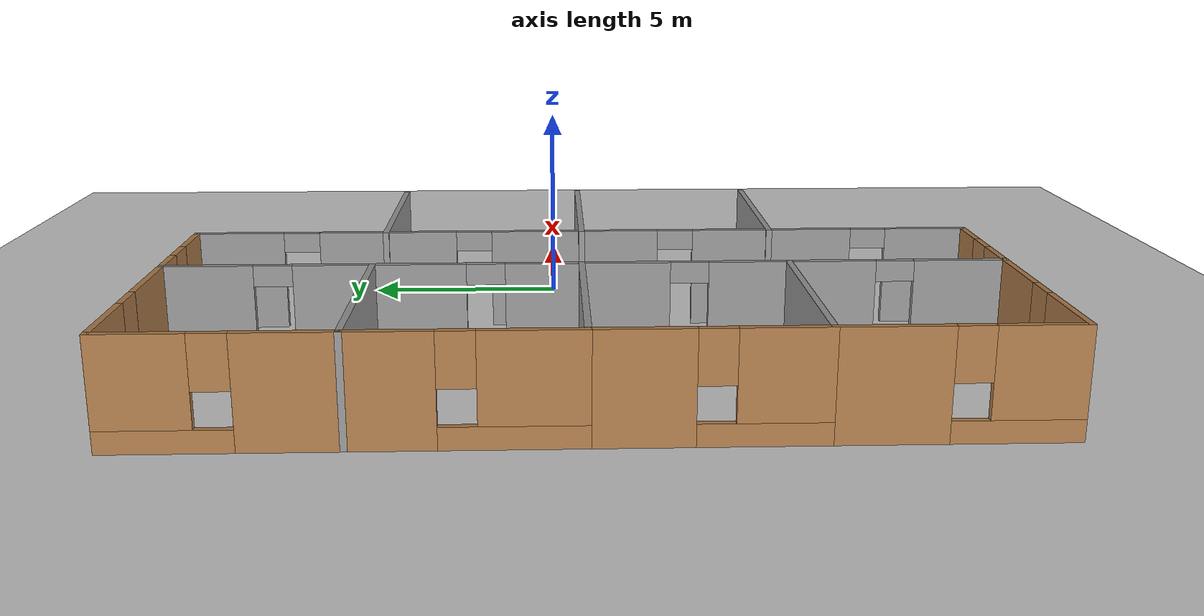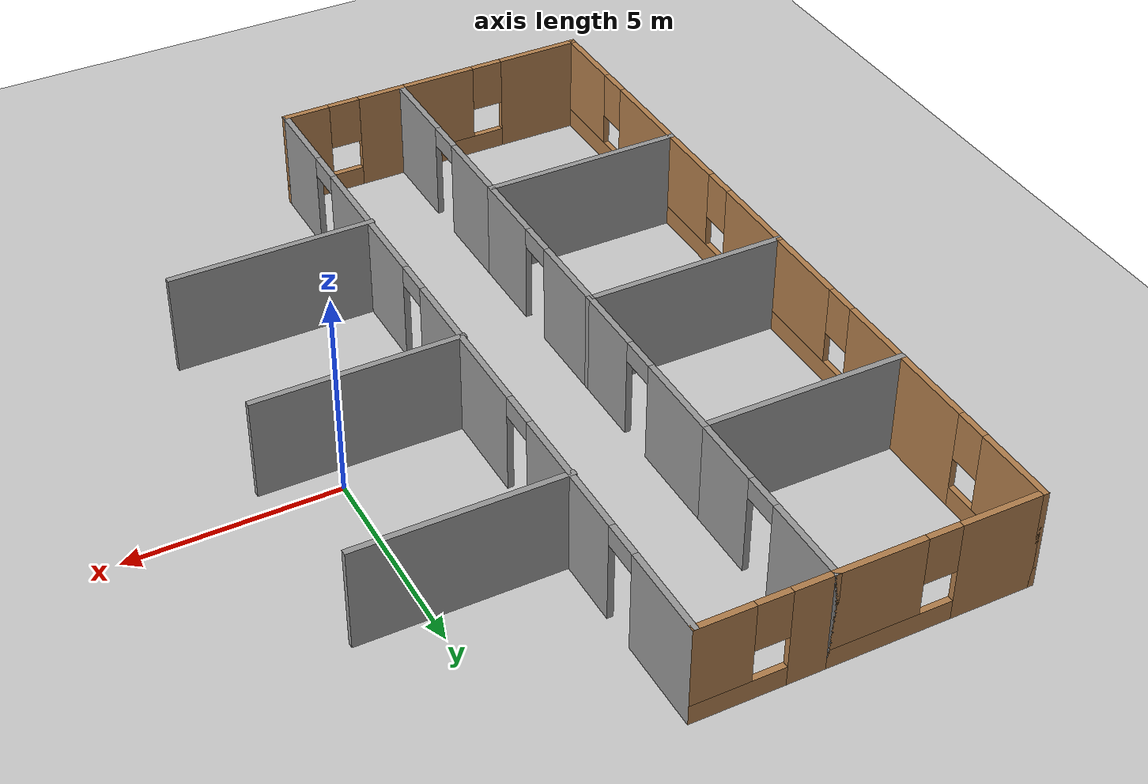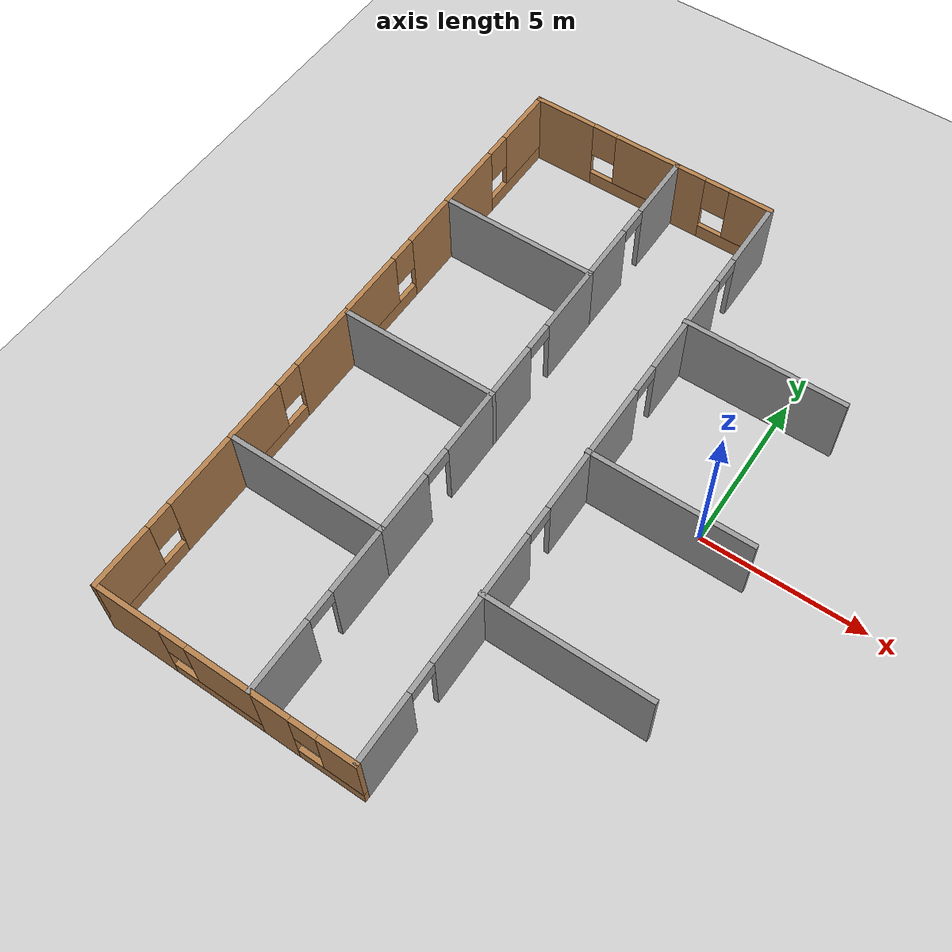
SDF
<sdf version="1.7">
 <world name="hospital_world">
  <model name="ground_plane">
   <static>1</static>
   <link name="link">
    <collision name="collision">
     <geometry><plane><normal>0 0 1</normal><size>100 100</size></plane></geometry>
     <surface><friction><ode><mu>100</mu><mu2>50</mu2></ode></friction></surface>
    </collision>
    <visual name="visual">
     <cast_shadows>0</cast_shadows>
     <geometry><plane><normal>0 0 1</normal><size>100 100</size></plane></geometry>
     <material>
      <script><uri>file://media/materials/scripts/gazebo.material</uri><name>Gazebo/Grey</name></script>
     </material>
    </visual>
   </link>
  </model>
  <model name="hospital_floor_v2">
   <pose>-0.734547 -0.759195 0 0 -0 0</pose>
   <link name="Wall_115">
    <collision name="Wall_115_Collision">
     <geometry><box><size>5 0.15 2.5</size></box></geometry>
     <pose>0 0 1.25 0 -0 0</pose>
    </collision>
    <visual name="Wall_115_Visual">
     <pose>0 0 1.25 0 -0 0</pose>
     <geometry><box><size>5 0.15 2.5</size></box></geometry>
     <material>
      <script><uri>file://media/materials/scripts/gazebo.material</uri><name>Gazebo/Grey</name></script>
      <ambient>1 1 1 1</ambient>
     </material>
     <meta><layer>0</layer></meta>
    </visual>
    <pose>-0.036828 5.04089 0 0 -0 0</pose>
   </link>
   <link name="Wall_117">
    <collision name="Wall_117_Collision">
     <geometry><box><size>5 0.15 2.5</size></box></geometry>
     <pose>0 0 1.25 0 -0 0</pose>
    </collision>
    <visual name="Wall_117_Visual">
     <pose>0 0 1.25 0 -0 0</pose>
     <geometry><box><size>5 0.15 2.5</size></box></geometry>
     <material>
      <script><uri>file://media/materials/scripts/gazebo.material</uri><name>Gazebo/Grey</name></script>
      <ambient>1 1 1 1</ambient>
     </material>
     <meta><layer>0</layer></meta>
    </visual>
    <pose>-0.036828 0.052719 0 0 -0 0</pose>
   </link>
   <link name="Wall_119">
    <collision name="Wall_119_Collision">
     <geometry><box><size>5 0.15 2.5</size></box></geometry>
     <pose>0 0 1.25 0 -0 0</pose>
    </collision>
    <visual name="Wall_119_Visual">
     <pose>0 0 1.25 0 -0 0</pose>
     <geometry><box><size>5 0.15 2.5</size></box></geometry>
     <material>
      <script><uri>file://media/materials/scripts/gazebo.material</uri><name>Gazebo/Grey</name></script>
      <ambient>1 1 1 1</ambient>
     </material>
     <meta><layer>0</layer></meta>
    </visual>
    <pose>-0.036828 -4.77454 0 0 -0 0</pose>
   </link>
   <link name="Wall_24">
    <pose>-10.375 2.5506 0 0 -0 -1.5708</pose>
    <visual name="Wall_24_Visual_0">
     <pose>-1.53431 0 1.25 0 -0 0</pose>
     <geometry><box><size>1.93138 0.15 2.5</size></box></geometry>
     <material>
      <script><uri>file://media/materials/scripts/gazebo.material</uri><name>Gazebo/Wood</name></script>
      <ambient>1 1 1 1</ambient>
     </material>
     <meta><layer>0</layer></meta>
    </visual>
    <collision name="Wall_24_Collision_0">
     <geometry><box><size>1.93138 0.15 2.5</size></box></geometry>
     <pose>-1.53431 0 1.25 0 -0 0</pose>
    </collision>
    <visual name="Wall_24_Visual_1">
     <pose>0.965692 0 0.25 0 -0 0</pose>
     <geometry><box><size>3.06862 0.15 0.5</size></box></geometry>
     <material>
      <script><uri>file://media/materials/scripts/gazebo.material</uri><name>Gazebo/Wood</name></script>
      <ambient>1 1 1 1</ambient>
     </material>
     <meta><layer>0</layer></meta>
    </visual>
    <collision name="Wall_24_Collision_1">
     <geometry><box><size>3.06862 0.15 0.5</size></box></geometry>
     <pose>0.965692 0 0.25 0 -0 0</pose>
    </collision>
    <visual name="Wall_24_Visual_2">
     <pose>1.36569 0 1.5 0 -0 0</pose>
     <geometry><box><size>2.26862 0.15 2</size></box></geometry>
     <material>
      <script><uri>file://media/materials/scripts/gazebo.material</uri><name>Gazebo/Wood</name></script>
      <ambient>1 1 1 1</ambient>
     </material>
     <meta><layer>0</layer></meta>
    </visual>
    <collision name="Wall_24_Collision_2">
     <geometry><box><size>2.26862 0.15 2</size></box></geometry>
     <pose>1.36569 0 1.5 0 -0 0</pose>
    </collision>
    <visual name="Wall_24_Visual_3">
     <pose>-0.168617 0 1.9 0 -0 0</pose>
     <geometry><box><size>0.8 0.15 1.2</size></box></geometry>
     <material>
      <script><uri>file://media/materials/scripts/gazebo.material</uri><name>Gazebo/Wood</name></script>
      <ambient>1 1 1 1</ambient>
     </material>
     <meta><layer>0</layer></meta>
    </visual>
    <collision name="Wall_24_Collision_3">
     <geometry><box><size>0.8 0.15 1.2</size></box></geometry>
     <pose>-0.168617 0 1.9 0 -0 0</pose>
    </collision>
   </link>
   <link name="Wall_28">
    <collision name="Wall_28_Collision">
     <geometry><box><size>5 0.15 2.5</size></box></geometry>
     <pose>0 0 1.25 0 -0 0</pose>
    </collision>
    <visual name="Wall_28_Visual">
     <pose>0 0 1.25 0 -0 0</pose>
     <geometry><box><size>5 0.15 2.5</size></box></geometry>
     <material>
      <script><uri>file://media/materials/scripts/gazebo.material</uri><name>Gazebo/Grey</name></script>
      <ambient>1 1 1 1</ambient>
     </material>
     <meta><layer>0</layer></meta>
    </visual>
    <pose>-7.95 4.9756 0 0 -0 0</pose>
   </link>
   <link name="Wall_29">
    <pose>-5.525 2.5506 0 0 -0 -1.5708</pose>
    <visual name="Wall_29_Visual_0">
     <pose>-1.3768 0 1.25 0 -0 0</pose>
     <geometry><box><size>2.24639 0.15 2.5</size></box></geometry>
     <material>
      <script><uri>file://media/materials/scripts/gazebo.material</uri><name>Gazebo/Grey</name></script>
      <ambient>1 1 1 1</ambient>
     </material>
     <meta><layer>0</layer></meta>
    </visual>
    <collision name="Wall_29_Collision_0">
     <geometry><box><size>2.24639 0.15 2.5</size></box></geometry>
     <pose>-1.3768 0 1.25 0 -0 0</pose>
    </collision>
    <visual name="Wall_29_Visual_1">
     <pose>1.5732 0 1.25 0 -0 0</pose>
     <geometry><box><size>1.85361 0.15 2.5</size></box></geometry>
     <material>
      <script><uri>file://media/materials/scripts/gazebo.material</uri><name>Gazebo/Grey</name></script>
      <ambient>1 1 1 1</ambient>
     </material>
     <meta><layer>0</layer></meta>
    </visual>
    <collision name="Wall_29_Collision_1">
     <geometry><box><size>1.85361 0.15 2.5</size></box></geometry>
     <pose>1.5732 0 1.25 0 -0 0</pose>
    </collision>
    <visual name="Wall_29_Visual_2">
     <pose>0.196393 0 2.25 0 -0 0</pose>
     <geometry><box><size>0.9 0.15 0.5</size></box></geometry>
     <material>
      <script><uri>file://media/materials/scripts/gazebo.material</uri><name>Gazebo/Grey</name></script>
      <ambient>1 1 1 1</ambient>
     </material>
     <meta><layer>0</layer></meta>
    </visual>
    <collision name="Wall_29_Collision_2">
     <geometry><box><size>0.9 0.15 0.5</size></box></geometry>
     <pose>0.196393 0 2.25 0 -0 0</pose>
    </collision>
   </link>
   <link name="Wall_30">
    <collision name="Wall_30_Collision">
     <geometry><box><size>5 0.15 2.5</size></box></geometry>
     <pose>0 0 1.25 0 -0 0</pose>
    </collision>
    <visual name="Wall_30_Visual">
     <pose>0 0 1.25 0 -0 0</pose>
     <geometry><box><size>5 0.15 2.5</size></box></geometry>
     <material>
      <script><uri>file://media/materials/scripts/gazebo.material</uri><name>Gazebo/Grey</name></script>
      <ambient>1 1 1 1</ambient>
     </material>
     <meta><layer>0</layer></meta>
    </visual>
    <pose>-7.95 0.125599 0 0 -0 3.14159</pose>
   </link>
   <link name="Wall_31">
    <pose>-10.375 -2.2994 0 0 -0 -1.5708</pose>
    <visual name="Wall_31_Visual_0">
     <pose>-1.38396 0 1.25 0 -0 0</pose>
     <geometry><box><size>2.23208 0.15 2.5</size></box></geometry>
     <material>
      <script><uri>file://media/materials/scripts/gazebo.material</uri><name>Gazebo/Wood</name></script>
      <ambient>1 1 1 1</ambient>
     </material>
     <meta><layer>0</layer></meta>
    </visual>
    <collision name="Wall_31_Collision_0">
     <geometry><box><size>2.23208 0.15 2.5</size></box></geometry>
     <pose>-1.38396 0 1.25 0 -0 0</pose>
    </collision>
    <visual name="Wall_31_Visual_1">
     <pose>1.11604 0 0.25 0 -0 0</pose>
     <geometry><box><size>2.76792 0.15 0.5</size></box></geometry>
     <material>
      <script><uri>file://media/materials/scripts/gazebo.material</uri><name>Gazebo/Wood</name></script>
      <ambient>1 1 1 1</ambient>
     </material>
     <meta><layer>0</layer></meta>
    </visual>
    <collision name="Wall_31_Collision_1">
     <geometry><box><size>2.76792 0.15 0.5</size></box></geometry>
     <pose>1.11604 0 0.25 0 -0 0</pose>
    </collision>
    <visual name="Wall_31_Visual_2">
     <pose>1.51604 0 1.5 0 -0 0</pose>
     <geometry><box><size>1.96792 0.15 2</size></box></geometry>
     <material>
      <script><uri>file://media/materials/scripts/gazebo.material</uri><name>Gazebo/Wood</name></script>
      <ambient>1 1 1 1</ambient>
     </material>
     <meta><layer>0</layer></meta>
    </visual>
    <collision name="Wall_31_Collision_2">
     <geometry><box><size>1.96792 0.15 2</size></box></geometry>
     <pose>1.51604 0 1.5 0 -0 0</pose>
    </collision>
    <visual name="Wall_31_Visual_3">
     <pose>0.13208 0 1.9 0 -0 0</pose>
     <geometry><box><size>0.8 0.15 1.2</size></box></geometry>
     <material>
      <script><uri>file://media/materials/scripts/gazebo.material</uri><name>Gazebo/Wood</name></script>
      <ambient>1 1 1 1</ambient>
     </material>
     <meta><layer>0</layer></meta>
    </visual>
    <collision name="Wall_31_Collision_3">
     <geometry><box><size>0.8 0.15 1.2</size></box></geometry>
     <pose>0.13208 0 1.9 0 -0 0</pose>
    </collision>
   </link>
   <link name="Wall_32">
    <collision name="Wall_32_Collision">
     <geometry><box><size>5 0.15 2.5</size></box></geometry>
     <pose>0 0 1.25 0 -0 0</pose>
    </collision>
    <visual name="Wall_32_Visual">
     <pose>0 0 1.25 0 -0 0</pose>
     <geometry><box><size>5 0.15 2.5</size></box></geometry>
     <material>
      <script><uri>file://media/materials/scripts/gazebo.material</uri><name>Gazebo/Grey</name></script>
      <ambient>1 1 1 1</ambient>
     </material>
     <meta><layer>0</layer></meta>
    </visual>
    <pose>-7.95 -4.7244 0 0 -0 0</pose>
   </link>
   <link name="Wall_33">
    <pose>-5.525 -2.2994 0 0 -0 1.5708</pose>
    <visual name="Wall_33_Visual_0">
     <pose>-1.52076 0 1.25 0 -0 0</pose>
     <geometry><box><size>1.95848 0.15 2.5</size></box></geometry>
     <material>
      <script><uri>file://media/materials/scripts/gazebo.material</uri><name>Gazebo/Grey</name></script>
      <ambient>1 1 1 1</ambient>
     </material>
     <meta><layer>0</layer></meta>
    </visual>
    <collision name="Wall_33_Collision_0">
     <geometry><box><size>1.95848 0.15 2.5</size></box></geometry>
     <pose>-1.52076 0 1.25 0 -0 0</pose>
    </collision>
    <visual name="Wall_33_Visual_1">
     <pose>1.42924 0 1.25 0 -0 0</pose>
     <geometry><box><size>2.14152 0.15 2.5</size></box></geometry>
     <material>
      <script><uri>file://media/materials/scripts/gazebo.material</uri><name>Gazebo/Grey</name></script>
      <ambient>1 1 1 1</ambient>
     </material>
     <meta><layer>0</layer></meta>
    </visual>
    <collision name="Wall_33_Collision_1">
     <geometry><box><size>2.14152 0.15 2.5</size></box></geometry>
     <pose>1.42924 0 1.25 0 -0 0</pose>
    </collision>
    <visual name="Wall_33_Visual_2">
     <pose>-0.091523 0 2.25 0 -0 0</pose>
     <geometry><box><size>0.9 0.15 0.5</size></box></geometry>
     <material>
      <script><uri>file://media/materials/scripts/gazebo.material</uri><name>Gazebo/Grey</name></script>
      <ambient>1 1 1 1</ambient>
     </material>
     <meta><layer>0</layer></meta>
    </visual>
    <collision name="Wall_33_Collision_2">
     <geometry><box><size>0.9 0.15 0.5</size></box></geometry>
     <pose>-0.091523 0 2.25 0 -0 0</pose>
    </collision>
   </link>
   <link name="Wall_35">
    <pose>-10.375 -7.2744 0 0 -0 -1.5708</pose>
    <visual name="Wall_35_Visual_0">
     <pose>-1.37889 0 1.25 0 -0 0</pose>
     <geometry><box><size>2.49222 0.15 2.5</size></box></geometry>
     <material>
      <script><uri>file://media/materials/scripts/gazebo.material</uri><name>Gazebo/Wood</name></script>
      <ambient>1 1 1 1</ambient>
     </material>
     <meta><layer>0</layer></meta>
    </visual>
    <collision name="Wall_35_Collision_0">
     <geometry><box><size>2.49222 0.15 2.5</size></box></geometry>
     <pose>-1.37889 0 1.25 0 -0 0</pose>
    </collision>
    <visual name="Wall_35_Visual_1">
     <pose>1.24611 0 0.25 0 -0 0</pose>
     <geometry><box><size>2.75778 0.15 0.5</size></box></geometry>
     <material>
      <script><uri>file://media/materials/scripts/gazebo.material</uri><name>Gazebo/Wood</name></script>
      <ambient>1 1 1 1</ambient>
     </material>
     <meta><layer>0</layer></meta>
    </visual>
    <collision name="Wall_35_Collision_1">
     <geometry><box><size>2.75778 0.15 0.5</size></box></geometry>
     <pose>1.24611 0 0.25 0 -0 0</pose>
    </collision>
    <visual name="Wall_35_Visual_2">
     <pose>1.64611 0 1.5 0 -0 0</pose>
     <geometry><box><size>1.95778 0.15 2</size></box></geometry>
     <material>
      <script><uri>file://media/materials/scripts/gazebo.material</uri><name>Gazebo/Wood</name></script>
      <ambient>1 1 1 1</ambient>
     </material>
     <meta><layer>0</layer></meta>
    </visual>
    <collision name="Wall_35_Collision_2">
     <geometry><box><size>1.95778 0.15 2</size></box></geometry>
     <pose>1.64611 0 1.5 0 -0 0</pose>
    </collision>
    <visual name="Wall_35_Visual_3">
     <pose>0.26722 0 1.9 0 -0 0</pose>
     <geometry><box><size>0.8 0.15 1.2</size></box></geometry>
     <material>
      <script><uri>file://media/materials/scripts/gazebo.material</uri><name>Gazebo/Wood</name></script>
      <ambient>1 1 1 1</ambient>
     </material>
     <meta><layer>0</layer></meta>
    </visual>
    <collision name="Wall_35_Collision_3">
     <geometry><box><size>0.8 0.15 1.2</size></box></geometry>
     <pose>0.26722 0 1.9 0 -0 0</pose>
    </collision>
   </link>
   <link name="Wall_36">
    <pose>-7.95 -9.8244 0 0 -0 0</pose>
    <visual name="Wall_36_Visual_0">
     <pose>-1.41383 0 1.25 0 -0 0</pose>
     <geometry><box><size>2.17234 0.15 2.5</size></box></geometry>
     <material>
      <script><uri>file://media/materials/scripts/gazebo.material</uri><name>Gazebo/Wood</name></script>
      <ambient>1 1 1 1</ambient>
     </material>
     <meta><layer>0</layer></meta>
    </visual>
    <collision name="Wall_36_Collision_0">
     <geometry><box><size>2.17234 0.15 2.5</size></box></geometry>
     <pose>-1.41383 0 1.25 0 -0 0</pose>
    </collision>
    <visual name="Wall_36_Visual_1">
     <pose>1.08617 0 0.25 0 -0 0</pose>
     <geometry><box><size>2.82766 0.15 0.5</size></box></geometry>
     <material>
      <script><uri>file://media/materials/scripts/gazebo.material</uri><name>Gazebo/Wood</name></script>
      <ambient>1 1 1 1</ambient>
     </material>
     <meta><layer>0</layer></meta>
    </visual>
    <collision name="Wall_36_Collision_1">
     <geometry><box><size>2.82766 0.15 0.5</size></box></geometry>
     <pose>1.08617 0 0.25 0 -0 0</pose>
    </collision>
    <visual name="Wall_36_Visual_2">
     <pose>1.48617 0 1.5 0 -0 0</pose>
     <geometry><box><size>2.02766 0.15 2</size></box></geometry>
     <material>
      <script><uri>file://media/materials/scripts/gazebo.material</uri><name>Gazebo/Wood</name></script>
      <ambient>1 1 1 1</ambient>
     </material>
     <meta><layer>0</layer></meta>
    </visual>
    <collision name="Wall_36_Collision_2">
     <geometry><box><size>2.02766 0.15 2</size></box></geometry>
     <pose>1.48617 0 1.5 0 -0 0</pose>
    </collision>
    <visual name="Wall_36_Visual_3">
     <pose>0.072339 0 1.9 0 -0 0</pose>
     <geometry><box><size>0.8 0.15 1.2</size></box></geometry>
     <material>
      <script><uri>file://media/materials/scripts/gazebo.material</uri><name>Gazebo/Wood</name></script>
      <ambient>1 1 1 1</ambient>
     </material>
     <meta><layer>0</layer></meta>
    </visual>
    <collision name="Wall_36_Collision_3">
     <geometry><box><size>0.8 0.15 1.2</size></box></geometry>
     <pose>0.072339 0 1.9 0 -0 0</pose>
    </collision>
   </link>
   <link name="Wall_37">
    <pose>-5.525 -7.2744 0 0 -0 1.5708</pose>
    <visual name="Wall_37_Visual_0">
     <pose>-1.50888 0 1.25 0 -0 0</pose>
     <geometry><box><size>2.23223 0.15 2.5</size></box></geometry>
     <material>
      <script><uri>file://media/materials/scripts/gazebo.material</uri><name>Gazebo/Grey</name></script>
      <ambient>1 1 1 1</ambient>
     </material>
     <meta><layer>0</layer></meta>
    </visual>
    <collision name="Wall_37_Collision_0">
     <geometry><box><size>2.23223 0.15 2.5</size></box></geometry>
     <pose>-1.50888 0 1.25 0 -0 0</pose>
    </collision>
    <visual name="Wall_37_Visual_1">
     <pose>1.56612 0 1.25 0 -0 0</pose>
     <geometry><box><size>2.11777 0.15 2.5</size></box></geometry>
     <material>
      <script><uri>file://media/materials/scripts/gazebo.material</uri><name>Gazebo/Grey</name></script>
      <ambient>1 1 1 1</ambient>
     </material>
     <meta><layer>0</layer></meta>
    </visual>
    <collision name="Wall_37_Collision_1">
     <geometry><box><size>2.11777 0.15 2.5</size></box></geometry>
     <pose>1.56612 0 1.25 0 -0 0</pose>
    </collision>
    <visual name="Wall_37_Visual_2">
     <pose>0.057233 0 2.25 0 -0 0</pose>
     <geometry><box><size>0.9 0.15 0.5</size></box></geometry>
     <material>
      <script><uri>file://media/materials/scripts/gazebo.material</uri><name>Gazebo/Grey</name></script>
      <ambient>1 1 1 1</ambient>
     </material>
     <meta><layer>0</layer></meta>
    </visual>
    <collision name="Wall_37_Collision_2">
     <geometry><box><size>0.9 0.15 0.5</size></box></geometry>
     <pose>0.057233 0 2.25 0 -0 0</pose>
    </collision>
   </link>
   <link name="Wall_39">
    <pose>-10.375 7.4006 0 0 -0 1.5708</pose>
    <visual name="Wall_39_Visual_0">
     <pose>-1.39785 0 1.25 0 -0 0</pose>
     <geometry><box><size>2.2043 0.15 2.5</size></box></geometry>
     <material>
      <script><uri>file://media/materials/scripts/gazebo.material</uri><name>Gazebo/Wood</name></script>
      <ambient>1 1 1 1</ambient>
     </material>
     <meta><layer>0</layer></meta>
    </visual>
    <collision name="Wall_39_Collision_0">
     <geometry><box><size>2.2043 0.15 2.5</size></box></geometry>
     <pose>-1.39785 0 1.25 0 -0 0</pose>
    </collision>
    <visual name="Wall_39_Visual_1">
     <pose>1.10215 0 0.25 0 -0 0</pose>
     <geometry><box><size>2.7957 0.15 0.5</size></box></geometry>
     <material>
      <script><uri>file://media/materials/scripts/gazebo.material</uri><name>Gazebo/Wood</name></script>
      <ambient>1 1 1 1</ambient>
     </material>
     <meta><layer>0</layer></meta>
    </visual>
    <collision name="Wall_39_Collision_1">
     <geometry><box><size>2.7957 0.15 0.5</size></box></geometry>
     <pose>1.10215 0 0.25 0 -0 0</pose>
    </collision>
    <visual name="Wall_39_Visual_2">
     <pose>1.50215 0 1.5 0 -0 0</pose>
     <geometry><box><size>1.9957 0.15 2</size></box></geometry>
     <material>
      <script><uri>file://media/materials/scripts/gazebo.material</uri><name>Gazebo/Wood</name></script>
      <ambient>1 1 1 1</ambient>
     </material>
     <meta><layer>0</layer></meta>
    </visual>
    <collision name="Wall_39_Collision_2">
     <geometry><box><size>1.9957 0.15 2</size></box></geometry>
     <pose>1.50215 0 1.5 0 -0 0</pose>
    </collision>
    <visual name="Wall_39_Visual_3">
     <pose>0.104303 0 1.9 0 -0 0</pose>
     <geometry><box><size>0.8 0.15 1.2</size></box></geometry>
     <material>
      <script><uri>file://media/materials/scripts/gazebo.material</uri><name>Gazebo/Wood</name></script>
      <ambient>1 1 1 1</ambient>
     </material>
     <meta><layer>0</layer></meta>
    </visual>
    <collision name="Wall_39_Collision_3">
     <geometry><box><size>0.8 0.15 1.2</size></box></geometry>
     <pose>0.104303 0 1.9 0 -0 0</pose>
    </collision>
   </link>
   <link name="Wall_40">
    <pose>-7.95 9.8256 0 0 -0 0</pose>
    <visual name="Wall_40_Visual_0">
     <pose>-1.47467 0 1.25 0 -0 0</pose>
     <geometry><box><size>2.05067 0.15 2.5</size></box></geometry>
     <material>
      <script><uri>file://media/materials/scripts/gazebo.material</uri><name>Gazebo/Wood</name></script>
      <ambient>1 1 1 1</ambient>
     </material>
     <meta><layer>0</layer></meta>
    </visual>
    <collision name="Wall_40_Collision_0">
     <geometry><box><size>2.05067 0.15 2.5</size></box></geometry>
     <pose>-1.47467 0 1.25 0 -0 0</pose>
    </collision>
    <visual name="Wall_40_Visual_1">
     <pose>1.02533 0 0.25 0 -0 0</pose>
     <geometry><box><size>2.94933 0.15 0.5</size></box></geometry>
     <material>
      <script><uri>file://media/materials/scripts/gazebo.material</uri><name>Gazebo/Wood</name></script>
      <ambient>1 1 1 1</ambient>
     </material>
     <meta><layer>0</layer></meta>
    </visual>
    <collision name="Wall_40_Collision_1">
     <geometry><box><size>2.94933 0.15 0.5</size></box></geometry>
     <pose>1.02533 0 0.25 0 -0 0</pose>
    </collision>
    <visual name="Wall_40_Visual_2">
     <pose>1.42533 0 1.5 0 -0 0</pose>
     <geometry><box><size>2.14933 0.15 2</size></box></geometry>
     <material>
      <script><uri>file://media/materials/scripts/gazebo.material</uri><name>Gazebo/Wood</name></script>
      <ambient>1 1 1 1</ambient>
     </material>
     <meta><layer>0</layer></meta>
    </visual>
    <collision name="Wall_40_Collision_2">
     <geometry><box><size>2.14933 0.15 2</size></box></geometry>
     <pose>1.42533 0 1.5 0 -0 0</pose>
    </collision>
    <visual name="Wall_40_Visual_3">
     <pose>-0.049332 0 1.9 0 -0 0</pose>
     <geometry><box><size>0.8 0.15 1.2</size></box></geometry>
     <material>
      <script><uri>file://media/materials/scripts/gazebo.material</uri><name>Gazebo/Wood</name></script>
      <ambient>1 1 1 1</ambient>
     </material>
     <meta><layer>0</layer></meta>
    </visual>
    <collision name="Wall_40_Collision_3">
     <geometry><box><size>0.8 0.15 1.2</size></box></geometry>
     <pose>-0.049332 0 1.9 0 -0 0</pose>
    </collision>
   </link>
   <link name="Wall_41">
    <pose>-5.525 7.4006 0 0 -0 -1.5708</pose>
    <visual name="Wall_41_Visual_0">
     <pose>-1.40548 0 1.25 0 -0 0</pose>
     <geometry><box><size>2.18904 0.15 2.5</size></box></geometry>
     <material>
      <script><uri>file://media/materials/scripts/gazebo.material</uri><name>Gazebo/Grey</name></script>
      <ambient>1 1 1 1</ambient>
     </material>
     <meta><layer>0</layer></meta>
    </visual>
    <collision name="Wall_41_Collision_0">
     <geometry><box><size>2.18904 0.15 2.5</size></box></geometry>
     <pose>-1.40548 0 1.25 0 -0 0</pose>
    </collision>
    <visual name="Wall_41_Visual_1">
     <pose>1.54452 0 1.25 0 -0 0</pose>
     <geometry><box><size>1.91096 0.15 2.5</size></box></geometry>
     <material>
      <script><uri>file://media/materials/scripts/gazebo.material</uri><name>Gazebo/Grey</name></script>
      <ambient>1 1 1 1</ambient>
     </material>
     <meta><layer>0</layer></meta>
    </visual>
    <collision name="Wall_41_Collision_1">
     <geometry><box><size>1.91096 0.15 2.5</size></box></geometry>
     <pose>1.54452 0 1.25 0 -0 0</pose>
    </collision>
    <visual name="Wall_41_Visual_2">
     <pose>0.139037 0 2.25 0 -0 0</pose>
     <geometry><box><size>0.9 0.15 0.5</size></box></geometry>
     <material>
      <script><uri>file://media/materials/scripts/gazebo.material</uri><name>Gazebo/Grey</name></script>
      <ambient>1 1 1 1</ambient>
     </material>
     <meta><layer>0</layer></meta>
    </visual>
    <collision name="Wall_41_Collision_2">
     <geometry><box><size>0.9 0.15 0.5</size></box></geometry>
     <pose>0.139037 0 2.25 0 -0 0</pose>
    </collision>
   </link>
   <link name="Wall_43">
    <pose>-3.975 9.8256 0 0 -0 0</pose>
    <visual name="Wall_43_Visual_0">
     <pose>-1.09822 0 1.25 0 -0 0</pose>
     <geometry><box><size>1.05355 0.15 2.5</size></box></geometry>
     <material>
      <script><uri>file://media/materials/scripts/gazebo.material</uri><name>Gazebo/Wood</name></script>
      <ambient>1 1 1 1</ambient>
     </material>
     <meta><layer>0</layer></meta>
    </visual>
    <collision name="Wall_43_Collision_0">
     <geometry><box><size>1.05355 0.15 2.5</size></box></geometry>
     <pose>-1.09822 0 1.25 0 -0 0</pose>
    </collision>
    <visual name="Wall_43_Visual_1">
     <pose>0.526776 0 0.25 0 -0 0</pose>
     <geometry><box><size>2.19645 0.15 0.5</size></box></geometry>
     <material>
      <script><uri>file://media/materials/scripts/gazebo.material</uri><name>Gazebo/Wood</name></script>
      <ambient>1 1 1 1</ambient>
     </material>
     <meta><layer>0</layer></meta>
    </visual>
    <collision name="Wall_43_Collision_1">
     <geometry><box><size>2.19645 0.15 0.5</size></box></geometry>
     <pose>0.526776 0 0.25 0 -0 0</pose>
    </collision>
    <visual name="Wall_43_Visual_2">
     <pose>0.926776 0 1.5 0 -0 0</pose>
     <geometry><box><size>1.39645 0.15 2</size></box></geometry>
     <material>
      <script><uri>file://media/materials/scripts/gazebo.material</uri><name>Gazebo/Wood</name></script>
      <ambient>1 1 1 1</ambient>
     </material>
     <meta><layer>0</layer></meta>
    </visual>
    <collision name="Wall_43_Collision_2">
     <geometry><box><size>1.39645 0.15 2</size></box></geometry>
     <pose>0.926776 0 1.5 0 -0 0</pose>
    </collision>
    <visual name="Wall_43_Visual_3">
     <pose>-0.171448 0 1.9 0 -0 0</pose>
     <geometry><box><size>0.8 0.15 1.2</size></box></geometry>
     <material>
      <script><uri>file://media/materials/scripts/gazebo.material</uri><name>Gazebo/Wood</name></script>
      <ambient>1 1 1 1</ambient>
     </material>
     <meta><layer>0</layer></meta>
    </visual>
    <collision name="Wall_43_Collision_3">
     <geometry><box><size>0.8 0.15 1.2</size></box></geometry>
     <pose>-0.171448 0 1.9 0 -0 0</pose>
    </collision>
   </link>
   <link name="Wall_44">
    <pose>-2.425 0.025599 0 0 -0 -1.5708</pose>
    <visual name="Wall_44_Visual_0">
     <pose>-8.73992 0 1.25 0 -0 0</pose>
     <geometry><box><size>2.27015 0.15 2.5</size></box></geometry>
     <material>
      <script><uri>file://media/materials/scripts/gazebo.material</uri><name>Gazebo/Grey</name></script>
      <ambient>1 1 1 1</ambient>
     </material>
     <meta><layer>0</layer></meta>
    </visual>
    <collision name="Wall_44_Collision_0">
     <geometry><box><size>2.27015 0.15 2.5</size></box></geometry>
     <pose>-8.73992 0 1.25 0 -0 0</pose>
    </collision>
    <visual name="Wall_44_Visual_1">
     <pose>-4.96479 0 1.25 0 -0 0</pose>
     <geometry><box><size>3.48012 0.15 2.5</size></box></geometry>
     <material>
      <script><uri>file://media/materials/scripts/gazebo.material</uri><name>Gazebo/Grey</name></script>
      <ambient>1 1 1 1</ambient>
     </material>
     <meta><layer>0</layer></meta>
    </visual>
    <collision name="Wall_44_Collision_1">
     <geometry><box><size>3.48012 0.15 2.5</size></box></geometry>
     <pose>-4.96479 0 1.25 0 -0 0</pose>
    </collision>
    <visual name="Wall_44_Visual_2">
     <pose>-0.199382 0 1.25 0 -0 0</pose>
     <geometry><box><size>4.2507 0.15 2.5</size></box></geometry>
     <material>
      <script><uri>file://media/materials/scripts/gazebo.material</uri><name>Gazebo/Grey</name></script>
      <ambient>1 1 1 1</ambient>
     </material>
     <meta><layer>0</layer></meta>
    </visual>
    <collision name="Wall_44_Collision_2">
     <geometry><box><size>4.2507 0.15 2.5</size></box></geometry>
     <pose>-0.199382 0 1.25 0 -0 0</pose>
    </collision>
    <visual name="Wall_44_Visual_3">
     <pose>4.8702 0 1.25 0 -0 0</pose>
     <geometry><box><size>4.08847 0.15 2.5</size></box></geometry>
     <material>
      <script><uri>file://media/materials/scripts/gazebo.material</uri><name>Gazebo/Grey</name></script>
      <ambient>1 1 1 1</ambient>
     </material>
     <meta><layer>0</layer></meta>
    </visual>
    <collision name="Wall_44_Collision_3">
     <geometry><box><size>4.08847 0.15 2.5</size></box></geometry>
     <pose>4.8702 0 1.25 0 -0 0</pose>
    </collision>
    <visual name="Wall_44_Visual_4">
     <pose>8.84472 0 1.25 0 -0 0</pose>
     <geometry><box><size>2.06056 0.15 2.5</size></box></geometry>
     <material>
      <script><uri>file://media/materials/scripts/gazebo.material</uri><name>Gazebo/Grey</name></script>
      <ambient>1 1 1 1</ambient>
     </material>
     <meta><layer>0</layer></meta>
    </visual>
    <collision name="Wall_44_Collision_4">
     <geometry><box><size>2.06056 0.15 2.5</size></box></geometry>
     <pose>8.84472 0 1.25 0 -0 0</pose>
    </collision>
    <visual name="Wall_44_Visual_5">
     <pose>-7.15485 0 2.25 0 -0 0</pose>
     <geometry><box><size>0.9 0.15 0.5</size></box></geometry>
     <material>
      <script><uri>file://media/materials/scripts/gazebo.material</uri><name>Gazebo/Grey</name></script>
      <ambient>1 1 1 1</ambient>
     </material>
     <meta><layer>0</layer></meta>
    </visual>
    <collision name="Wall_44_Collision_5">
     <geometry><box><size>0.9 0.15 0.5</size></box></geometry>
     <pose>-7.15485 0 2.25 0 -0 0</pose>
    </collision>
    <visual name="Wall_44_Visual_6">
     <pose>-2.77473 0 2.25 0 -0 0</pose>
     <geometry><box><size>0.9 0.15 0.5</size></box></geometry>
     <material>
      <script><uri>file://media/materials/scripts/gazebo.material</uri><name>Gazebo/Grey</name></script>
      <ambient>1 1 1 1</ambient>
     </material>
     <meta><layer>0</layer></meta>
    </visual>
    <collision name="Wall_44_Collision_6">
     <geometry><box><size>0.9 0.15 0.5</size></box></geometry>
     <pose>-2.77473 0 2.25 0 -0 0</pose>
    </collision>
    <visual name="Wall_44_Visual_7">
     <pose>2.37597 0 2.25 0 -0 0</pose>
     <geometry><box><size>0.9 0.15 0.5</size></box></geometry>
     <material>
      <script><uri>file://media/materials/scripts/gazebo.material</uri><name>Gazebo/Grey</name></script>
      <ambient>1 1 1 1</ambient>
     </material>
     <meta><layer>0</layer></meta>
    </visual>
    <collision name="Wall_44_Collision_7">
     <geometry><box><size>0.9 0.15 0.5</size></box></geometry>
     <pose>2.37597 0 2.25 0 -0 0</pose>
    </collision>
    <visual name="Wall_44_Visual_8">
     <pose>7.36444 0 2.25 0 -0 0</pose>
     <geometry><box><size>0.9 0.15 0.5</size></box></geometry>
     <material>
      <script><uri>file://media/materials/scripts/gazebo.material</uri><name>Gazebo/Grey</name></script>
      <ambient>1 1 1 1</ambient>
     </material>
     <meta><layer>0</layer></meta>
    </visual>
    <collision name="Wall_44_Collision_8">
     <geometry><box><size>0.9 0.15 0.5</size></box></geometry>
     <pose>7.36444 0 2.25 0 -0 0</pose>
    </collision>
   </link>
   <link name="Wall_47">
    <pose>-3.975 -9.8244 0 0 -0 0</pose>
    <visual name="Wall_47_Visual_0">
     <pose>-0.996933 0 1.25 0 -0 0</pose>
     <geometry><box><size>1.25654 0.15 2.5</size></box></geometry>
     <material>
      <script><uri>file://media/materials/scripts/gazebo.material</uri><name>Gazebo/Wood</name></script>
      <ambient>1 1 1 1</ambient>
     </material>
     <meta><layer>0</layer></meta>
    </visual>
    <collision name="Wall_47_Collision_0">
     <geometry><box><size>1.25654 0.15 2.5</size></box></geometry>
     <pose>-0.996933 0 1.25 0 -0 0</pose>
    </collision>
    <visual name="Wall_47_Visual_1">
     <pose>0.628268 0 0.25 0 -0 0</pose>
     <geometry><box><size>1.99387 0.15 0.5</size></box></geometry>
     <material>
      <script><uri>file://media/materials/scripts/gazebo.material</uri><name>Gazebo/Wood</name></script>
      <ambient>1 1 1 1</ambient>
     </material>
     <meta><layer>0</layer></meta>
    </visual>
    <collision name="Wall_47_Collision_1">
     <geometry><box><size>1.99387 0.15 0.5</size></box></geometry>
     <pose>0.628268 0 0.25 0 -0 0</pose>
    </collision>
    <visual name="Wall_47_Visual_2">
     <pose>1.02827 0 1.5 0 -0 0</pose>
     <geometry><box><size>1.19387 0.15 2</size></box></geometry>
     <material>
      <script><uri>file://media/materials/scripts/gazebo.material</uri><name>Gazebo/Wood</name></script>
      <ambient>1 1 1 1</ambient>
     </material>
     <meta><layer>0</layer></meta>
    </visual>
    <collision name="Wall_47_Collision_2">
     <geometry><box><size>1.19387 0.15 2</size></box></geometry>
     <pose>1.02827 0 1.5 0 -0 0</pose>
    </collision>
    <visual name="Wall_47_Visual_3">
     <pose>0.031335 0 1.9 0 -0 0</pose>
     <geometry><box><size>0.8 0.15 1.2</size></box></geometry>
     <material>
      <script><uri>file://media/materials/scripts/gazebo.material</uri><name>Gazebo/Wood</name></script>
      <ambient>1 1 1 1</ambient>
     </material>
     <meta><layer>0</layer></meta>
    </visual>
    <collision name="Wall_47_Collision_3">
     <geometry><box><size>0.8 0.15 1.2</size></box></geometry>
     <pose>0.031335 0 1.9 0 -0 0</pose>
    </collision>
   </link>
   <static>1</static>
  </model>
 </world>
</sdf>
